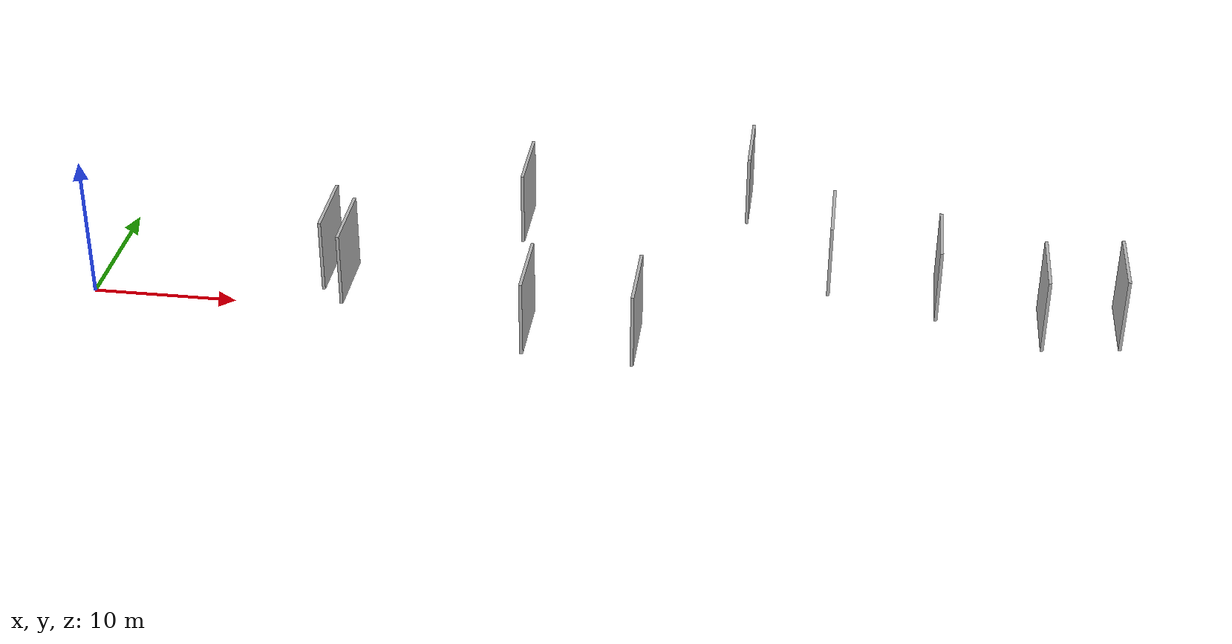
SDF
<sdf version="1.6">
 <world name="default">
  <scene>
   <sky><clouds><speed>12</speed></clouds></sky>
   <ambient>0.4 0.4 0.4 1</ambient>
   <background>0.7 0.7 0.7 1</background>
   <shadows>1</shadows>
  </scene>
  <gravity>0 0 -9.8066</gravity>
  <magnetic_field>6e-06 2.3e-05 -4.2e-05</magnetic_field>
  <physics default="0" name="default_physics" type="ode">
   <ode>
    <solver>
     <type>quick</type>
     <iters>10</iters>
     <sor>1.0</sor>
     <use_dynamic_moi_rescaling>0</use_dynamic_moi_rescaling>
    </solver>
    <constraints>
     <cfm>0</cfm>
     <erp>0.2</erp>
     <contact_max_correcting_vel>100</contact_max_correcting_vel>
     <contact_surface_layer>0.001</contact_surface_layer>
    </constraints>
   </ode>
   <max_step_size>0.004</max_step_size>
   <real_time_factor>1</real_time_factor>
   <real_time_update_rate>250</real_time_update_rate>
  </physics>
  <light name="sun" type="directional">
   <pose>0 0 10 0 0 0</pose>
   <diffuse>0.8 0.8 0.8 1</diffuse>
   <specular>0.2 0.2 0.2 1</specular>
   <attenuation>
    <range>1000</range>
    <constant>0.9</constant>
    <linear>0.01</linear>
    <quadratic>0.001</quadratic>
   </attenuation>
   <direction>-0.5 0.1 -0.9</direction>
  </light>
  <model name="grey_wall_1">
   <static>1</static>
   <pose>63.8310 -3.9767 5.0 0.000000 0.000000 1.570796</pose>
   <link name="link">
    <pose>0 0 2.50 0 0 0</pose>
    <collision name="collision"><geometry><box><size>5.00 0.2 5.00</size></box></geometry></collision>
    <visual name="visual">
     <cast_shadows>0</cast_shadows>
     <geometry><box><size>5.00 0.2 5.00</size></box></geometry>
     <material>
      <script>
       <uri>model://HANNAS_wall/materials/scripts</uri>
       <uri>model://HANNAS_wall/materials/textures</uri>
       <name>vrc/HANNAS_wall</name>
      </script>
     </material>
    </visual>
   </link>
  </model>
  <model name="grey_wall_2">
   <static>1</static>
   <pose>29.7589 4.7199 5.0 0.000000 0.000000 1.570796</pose>
   <link name="link">
    <pose>0 0 2.50 0 0 0</pose>
    <collision name="collision"><geometry><box><size>5.00 0.2 5.00</size></box></geometry></collision>
    <visual name="visual">
     <cast_shadows>0</cast_shadows>
     <geometry><box><size>5.00 0.2 5.00</size></box></geometry>
     <material>
      <script>
       <uri>model://HANNAS_wall/materials/scripts</uri>
       <uri>model://HANNAS_wall/materials/textures</uri>
       <name>vrc/HANNAS_wall</name>
      </script>
     </material>
    </visual>
   </link>
  </model>
  <model name="grey_wall_3">
   <static>1</static>
   <pose>19.3585 -4.4105 5.0 0.000000 0.000000 1.570796</pose>
   <link name="link">
    <pose>0 0 2.50 0 0 0</pose>
    <collision name="collision"><geometry><box><size>5.00 0.2 5.00</size></box></geometry></collision>
    <visual name="visual">
     <cast_shadows>0</cast_shadows>
     <geometry><box><size>5.00 0.2 5.00</size></box></geometry>
     <material>
      <script>
       <uri>model://HANNAS_wall/materials/scripts</uri>
       <uri>model://HANNAS_wall/materials/textures</uri>
       <name>vrc/HANNAS_wall</name>
      </script>
     </material>
    </visual>
   </link>
  </model>
  <model name="grey_wall_4">
   <static>1</static>
   <pose>50.3889 0.7031 5.0 0.000000 0.000000 1.570796</pose>
   <link name="link">
    <pose>0 0 2.50 0 0 0</pose>
    <collision name="collision"><geometry><box><size>5.00 0.2 5.00</size></box></geometry></collision>
    <visual name="visual">
     <cast_shadows>0</cast_shadows>
     <geometry><box><size>5.00 0.2 5.00</size></box></geometry>
     <material>
      <script>
       <uri>model://HANNAS_wall/materials/scripts</uri>
       <uri>model://HANNAS_wall/materials/textures</uri>
       <name>vrc/HANNAS_wall</name>
      </script>
     </material>
    </visual>
   </link>
  </model>
  <model name="grey_wall_5">
   <static>1</static>
   <pose>68.6634 -3.2285 5.0 0.000000 0.000000 1.570796</pose>
   <link name="link">
    <pose>0 0 2.50 0 0 0</pose>
    <collision name="collision"><geometry><box><size>5.00 0.2 5.00</size></box></geometry></collision>
    <visual name="visual">
     <cast_shadows>0</cast_shadows>
     <geometry><box><size>5.00 0.2 5.00</size></box></geometry>
     <material>
      <script>
       <uri>model://HANNAS_wall/materials/scripts</uri>
       <uri>model://HANNAS_wall/materials/textures</uri>
       <name>vrc/HANNAS_wall</name>
      </script>
     </material>
    </visual>
   </link>
  </model>
  <model name="grey_wall_6">
   <static>1</static>
   <pose>44.5293 9.1264 5.0 0.000000 0.000000 1.570796</pose>
   <link name="link">
    <pose>0 0 2.50 0 0 0</pose>
    <collision name="collision"><geometry><box><size>5.00 0.2 5.00</size></box></geometry></collision>
    <visual name="visual">
     <cast_shadows>0</cast_shadows>
     <geometry><box><size>5.00 0.2 5.00</size></box></geometry>
     <material>
      <script>
       <uri>model://HANNAS_wall/materials/scripts</uri>
       <uri>model://HANNAS_wall/materials/textures</uri>
       <name>vrc/HANNAS_wall</name>
      </script>
     </material>
    </visual>
   </link>
  </model>
  <model name="grey_wall_7">
   <static>1</static>
   <pose>38.7066 -9.0069 5.0 0.000000 0.000000 1.570796</pose>
   <link name="link">
    <pose>0 0 2.50 0 0 0</pose>
    <collision name="collision"><geometry><box><size>5.00 0.2 5.00</size></box></geometry></collision>
    <visual name="visual">
     <cast_shadows>0</cast_shadows>
     <geometry><box><size>5.00 0.2 5.00</size></box></geometry>
     <material>
      <script>
       <uri>model://HANNAS_wall/materials/scripts</uri>
       <uri>model://HANNAS_wall/materials/textures</uri>
       <name>vrc/HANNAS_wall</name>
      </script>
     </material>
    </visual>
   </link>
  </model>
  <model name="grey_wall_8">
   <static>1</static>
   <pose>57.2953 -1.3843 5.0 0.000000 0.000000 1.570796</pose>
   <link name="link">
    <pose>0 0 2.50 0 0 0</pose>
    <collision name="collision"><geometry><box><size>5.00 0.2 5.00</size></box></geometry></collision>
    <visual name="visual">
     <cast_shadows>0</cast_shadows>
     <geometry><box><size>5.00 0.2 5.00</size></box></geometry>
     <material>
      <script>
       <uri>model://HANNAS_wall/materials/scripts</uri>
       <uri>model://HANNAS_wall/materials/textures</uri>
       <name>vrc/HANNAS_wall</name>
      </script>
     </material>
    </visual>
   </link>
  </model>
  <model name="grey_wall_9">
   <static>1</static>
   <pose>31.7440 -8.5082 5.0 0.000000 0.000000 1.570796</pose>
   <link name="link">
    <pose>0 0 2.50 0 0 0</pose>
    <collision name="collision"><geometry><box><size>5.00 0.2 5.00</size></box></geometry></collision>
    <visual name="visual">
     <cast_shadows>0</cast_shadows>
     <geometry><box><size>5.00 0.2 5.00</size></box></geometry>
     <material>
      <script>
       <uri>model://HANNAS_wall/materials/scripts</uri>
       <uri>model://HANNAS_wall/materials/textures</uri>
       <name>vrc/HANNAS_wall</name>
      </script>
     </material>
    </visual>
   </link>
  </model>
  <model name="grey_wall_10">
   <static>1</static>
   <pose>17.8322 -2.9124 5.0 0.000000 0.000000 1.570796</pose>
   <link name="link">
    <pose>0 0 2.50 0 0 0</pose>
    <collision name="collision"><geometry><box><size>5.00 0.2 5.00</size></box></geometry></collision>
    <visual name="visual">
     <cast_shadows>0</cast_shadows>
     <geometry><box><size>5.00 0.2 5.00</size></box></geometry>
     <material>
      <script>
       <uri>model://HANNAS_wall/materials/scripts</uri>
       <uri>model://HANNAS_wall/materials/textures</uri>
       <name>vrc/HANNAS_wall</name>
      </script>
     </material>
    </visual>
   </link>
  </model>
 </world>
</sdf>
